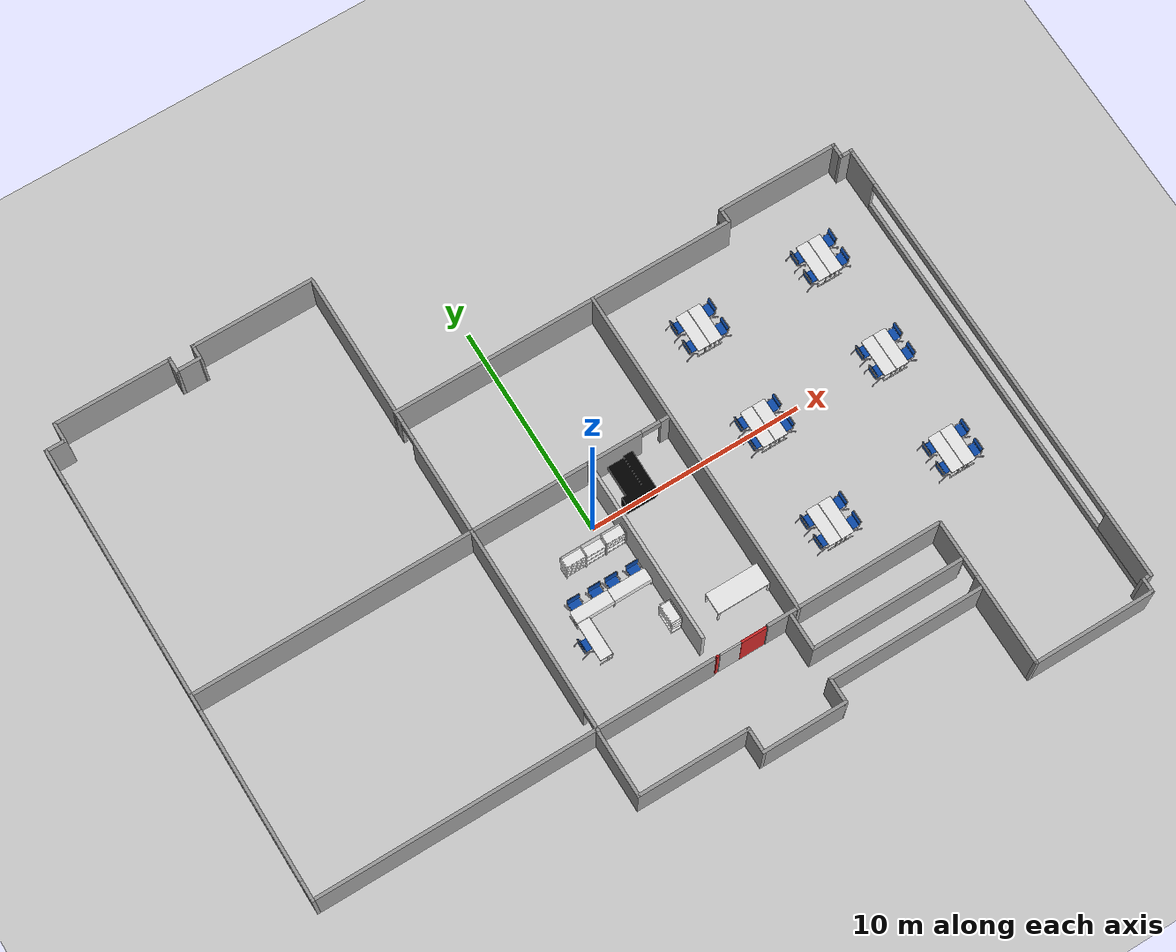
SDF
<?xml version="1.0" ?>
<sdf version="1.5">
  <world name="default">
    <gui>
      <camera name="user_camera">
        <pose>-5 -7 4 0 0.54 0.76</pose>
      </camera>
    </gui>
    <physics type='ode'>
      <real_time_factor>1</real_time_factor>
      <real_time_update_rate>0.0</real_time_update_rate>
      <max_step_size>0.002</max_step_size>
    </physics>
    <scene>
      <ambient>0.7 0.7 0.7 1</ambient>
      <background>0.1 0.1 0.1 1</background>
    </scene>
    <include>
      <uri>model://sun</uri>
    </include>
    <include>
      <uri>model://ground_plane</uri>
    </include>
    <include>
      <uri>model://2nd_floor</uri>
      <pose>0 0 0 0 0 0</pose>
      <static>true</static>
    </include>

<!--  ******* showroom *************  -->
    <include>
      <name>front</name>
      <uri>model://front</uri>
      <static>true</static>
      <pose>2.2 0.7 0 0 0 -1.57</pose>
    </include>
    <include>
      <name>meeting_table</name>
      <uri>model://meeting_table</uri>
      <pose>3.5 -5.5 0 0 0 -1.57</pose>
    </include>

<!--  ******* cafeteria *************  -->
    <include>
      <name>table_set1</name>
      <uri>model://table_set</uri>
      <pose>8 5 0 0 0 0</pose>
    </include>
    <include>
      <name>table_set2</name>
      <uri>model://table_set</uri>
      <pose>8 0 0 0 0 0</pose>
    </include>
    <include>
      <name>table_set3</name>
      <uri>model://table_set</uri>
      <pose>8 -5 0 0 0 0</pose>
    </include>
    <include>
      <name>table_set4</name>
      <uri>model://table_set</uri>
      <pose>14 5 0 0 0 0</pose>
    </include>
    <include>
      <name>table_set5</name>
      <uri>model://table_set</uri>
      <pose>14 0 0 0 0 0</pose>
    </include>
    <include>
      <name>table_set6</name>
      <uri>model://table_set</uri>
      <pose>14 -5 0 0 0 0</pose>
    </include>

<!--  ******* experimental room *************  -->

    <include>
      <name>shelf-1</name>
      <uri>model://shelf</uri>
      <pose>0.34 -1 0 0 0 -1.57</pose>
    </include>
    <include>
      <name>slef2</name>
      <uri>model://shelf2</uri>
      <pose>-0.61 -1 0 0 0 -1.57</pose>
    </include>
    <include>
      <name>slef3</name>
      <uri>model://shelf3</uri>
      <pose>-1.56 -1 0 0 0 -1.57</pose>
    </include>

    <include>
      <name>half_table_set1</name>
      <uri>model://half_table_set</uri>
      <pose>-0.1 -3.0 0 0 0 -1.57</pose>
    </include>
    <include>
      <name>half_table_set2</name>
      <uri>model://half_table_set</uri>
      <pose>-1.9 -3.0 0 0 0 -1.57</pose>
    </include>
    <include>
      <name>long_table</name>
      <uri>model://long_table</uri>
      <pose>-2.5 -4.2 0 0 0 0</pose>
    </include>

    <include>
      <name>shelf-2</name>
      <uri>model://shelf</uri>
      <pose>0.58 -5 0 0 0 3.14</pose>
    </include>

    <include>
      <name>chair</name>
      <uri>model://chair</uri>
      <pose>-2.9 -4.2 0 0 0 0</pose>
    </include>

<!-- *************  auto door   **************** -->

    <!-- World plugin that publishes event messages.
         The topics used in these messages match up with topics used by the
         plugin in the elevator model below.
    -->
    <plugin filename="libSimEventsPlugin.so" name="elevator_event_plugin">
      <!-- Region on the ground floor, in front of the elevator -->
      <region>
        <name>region1</name>
        <volume>
          <min>0.5 -6 0</min>
          <max>2.5 -9 1</max>
        </volume>
      </region>

      <!-- Region on the first floor, in front of the elevator -->
      <region>
        <name>region2</name>
        <volume>
          <min>0.5 -7 3</min>
          <max>2.5 -9 4</max>
        </volume>
      </region>

      <!-- Event publisher for ground floor-->
      <event>
        <name>region1_event</name>
        <type>occupied</type>
        <region>region1</region>
        <topic>~/elevator</topic>
        <msg_data>0</msg_data>
      </event>

      <!-- Event publisher for first floor-->
      <event>
        <name>region2_event</name>
        <type>occupied</type>
        <region>region2</region>
        <topic>~/elevator</topic>
        <msg_data>1</msg_data>
      </event>
    </plugin>

    <!-- The elevator car -->
    <model name="elevator">
      <pose>0 0 0.075 0 0 0</pose>
      <link name="link">
        <inertial>
          <mass>800</mass>
        </inertial>
        <!-- wall1_collision is the wall to the right of the door, when
             facing the door -->
        <collision name="wall1_collision">
          <pose>2.7 -7.8 1.2 0 0 0</pose>
          <geometry>
            <box>
              <size>1.2 0.1 2.5</size>
            </box>
          </geometry>
        </collision>
        <visual name="wall1_visual">
          <pose>2.7 -7.8 1.2 0 0 0</pose>
          <geometry>
            <box>
              <size>1.2 0.1 2.5</size>
            </box>
          </geometry>
          <material>
            <script>
              <name>Gazebo/Red</name>
            </script>
          </material>
        </visual>

        <!-- wall2_collision is the wall to the left of the door, when
             facing the door -->
        <collision name="wall2_collision">
          <pose>1.0 -7.8 1.2 0 0 0</pose>
          <geometry>
            <box>
              <size>0.125 0.1 2.5</size>
            </box>
          </geometry>
        </collision>
        <visual name="wall2_visual">
          <pose>1.0 -7.8 1.2 0 0 0</pose>
          <geometry>
            <box>
              <size>0.125 0.1 2.5</size>
            </box>
          </geometry>
          <material>
            <script>
              <name>Gazebo/Red</name>
            </script>
          </material>
        </visual>
      </link>

      <link name="door">
        <pose>1.6 -7.8 1.2 0 0 0</pose>
        <collision name="collision">
          <geometry>
            <box>
              <size>1.0 0.08 2.5</size>
            </box>
          </geometry>
        </collision>
        <visual name="visual">
          <geometry>
            <box>
              <size>1.0 0.08 2.5</size>
            </box>
          </geometry>
        </visual>
      </link>

      <joint name="door" type="prismatic">
        <parent>link</parent>
        <child>door</child>
        <axis>
          <xyz>1 0 0</xyz>
          <limit>
            <lower>0</lower>
            <upper>1</upper>
            <effort>10</effort>
          </limit>

          <dynamics>
            <damping>2</damping>
          </dynamics>
        </axis>
      </joint>

      <joint name="lift" type="prismatic">
        <parent>world</parent>
        <child>link</child>
        <axis>
          <xyz>0 0 1</xyz>
          <limit>
            <lower>0</lower>
            <upper>10</upper>
            <effort>100000</effort>
          </limit>

          <dynamics>
            <damping>50</damping>
          </dynamics>
        </axis>
        <physics>
          <ode>
            <implicit_spring_damper>1</implicit_spring_damper>
          </ode>
        </physics>
      </joint>

      <!-- Plugin to control the elevator -->
      <plugin filename="libElevatorPlugin.so" name="elevator_plugin">
        <lift_joint>elevator::lift</lift_joint>
        <door_joint>elevator::door</door_joint>
        <floor_height>3.075</floor_height>

        <!-- Time the elevator door will stay open in seconds -->
        <door_wait_time>5</door_wait_time>

        <!-- This topic is used to control the elevator -->
        <topic>~/elevator</topic>
      </plugin>
    </model>

  </world>
</sdf>

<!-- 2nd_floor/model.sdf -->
<sdf version='1.6'>
  <model name='2nd_floor'>
    <pose frame=''>-1.7675 -0.234448 0 0 -0 0</pose>
    <link name='Wall_14'>
      <collision name='Wall_14_Collision'>
        <geometry>
          <box>
            <size>3.25 0.15 2.5</size>
          </box>
        </geometry>
        <pose frame=''>0 0 1.25 0 -0 0</pose>
      </collision>
      <visual name='Wall_14_Visual'>
        <pose frame=''>0 0 1.25 0 -0 0</pose>
        <geometry>
          <box>
            <size>3.25 0.15 2.5</size>
          </box>
        </geometry>
        <material>
          <script>
            <uri>file://media/materials/scripts/gazebo.material</uri>
            <name>Gazebo/Grey</name>
          </script>
          <ambient>1 1 1 1</ambient>
        </material>
      </visual>
      <pose frame=''>-4.6545 -9.37455 0 0 0 -1.5708</pose>
    </link>
    <link name='Wall_15'>
      <collision name='Wall_15_Collision'>
        <geometry>
          <box>
            <size>5.25 0.15 2.5</size>
          </box>
        </geometry>
        <pose frame=''>0 0 1.25 0 -0 0</pose>
      </collision>
      <visual name='Wall_15_Visual'>
        <pose frame=''>0 0 1.25 0 -0 0</pose>
        <geometry>
          <box>
            <size>5.25 0.15 2.5</size>
          </box>
        </geometry>
        <material>
          <script>
            <uri>file://media/materials/scripts/gazebo.material</uri>
            <name>Gazebo/Grey</name>
          </script>
          <ambient>1 1 1 1</ambient>
        </material>
      </visual>
      <pose frame=''>-2.1045 -10.9246 0 0 -0 0</pose>
    </link>
    <link name='Wall_16'>
      <collision name='Wall_16_Collision'>
        <geometry>
          <box>
            <size>1.25 0.15 2.5</size>
          </box>
        </geometry>
        <pose frame=''>0 0 1.25 0 -0 0</pose>
      </collision>
      <visual name='Wall_16_Visual'>
        <pose frame=''>0 0 1.25 0 -0 0</pose>
        <geometry>
          <box>
            <size>1.25 0.15 2.5</size>
          </box>
        </geometry>
        <material>
          <script>
            <uri>file://media/materials/scripts/gazebo.material</uri>
            <name>Gazebo/Grey</name>
          </script>
          <ambient>1 1 1 1</ambient>
        </material>
      </visual>
      <pose frame=''>0.4455 -11.4746 0 0 0 -1.5708</pose>
    </link>
    <link name='Wall_17'>
      <collision name='Wall_17_Collision'>
        <geometry>
          <box>
            <size>4 0.15 2.5</size>
          </box>
        </geometry>
        <pose frame=''>0 0 1.25 0 -0 0</pose>
      </collision>
      <visual name='Wall_17_Visual'>
        <pose frame=''>0 0 1.25 0 -0 0</pose>
        <geometry>
          <box>
            <size>4 0.15 2.5</size>
          </box>
        </geometry>
        <material>
          <script>
            <uri>file://media/materials/scripts/gazebo.material</uri>
            <name>Gazebo/Grey</name>
          </script>
          <ambient>1 1 1 1</ambient>
        </material>
      </visual>
      <pose frame=''>2.3705 -12.0246 0 0 -0 0</pose>
    </link>
    <link name='Wall_18'>
      <collision name='Wall_18_Collision'>
        <geometry>
          <box>
            <size>1.25 0.15 2.5</size>
          </box>
        </geometry>
        <pose frame=''>0 0 1.25 0 -0 0</pose>
      </collision>
      <visual name='Wall_18_Visual'>
        <pose frame=''>0 0 1.25 0 -0 0</pose>
        <geometry>
          <box>
            <size>1.25 0.15 2.5</size>
          </box>
        </geometry>
        <material>
          <script>
            <uri>file://media/materials/scripts/gazebo.material</uri>
            <name>Gazebo/Grey</name>
          </script>
          <ambient>1 1 1 1</ambient>
        </material>
      </visual>
      <pose frame=''>4.2955 -11.4746 0 0 -0 1.5708</pose>
    </link>
    <link name='Wall_19'>
      <collision name='Wall_19_Collision'>
        <geometry>
          <box>
            <size>7.3 0.15 2.5</size>
          </box>
        </geometry>
        <pose frame=''>0 0 1.25 0 -0 0</pose>
      </collision>
      <visual name='Wall_19_Visual'>
        <pose frame=''>0 0 1.25 0 -0 0</pose>
        <geometry>
          <box>
            <size>7.3 0.15 2.5</size>
          </box>
        </geometry>
        <material>
          <script>
            <uri>file://media/materials/scripts/gazebo.material</uri>
            <name>Gazebo/Grey</name>
          </script>
          <ambient>1 1 1 1</ambient>
        </material>
      </visual>
      <pose frame=''>7.8705 -10.9246 0 0 -0 0</pose>
    </link>
    <link name='Wall_2'>
      <collision name='Wall_2_Collision'>
        <geometry>
          <box>
            <size>18.5 0.15 2.5</size>
          </box>
        </geometry>
        <pose frame=''>0 0 1.25 0 -0 0</pose>
      </collision>
      <visual name='Wall_2_Visual'>
        <pose frame=''>0 0 1.25 0 -0 0</pose>
        <geometry>
          <box>
            <size>18.5 0.15 2.5</size>
          </box>
        </geometry>
        <material>
          <script>
            <uri>file://media/materials/scripts/gazebo.material</uri>
            <name>Gazebo/Grey</name>
          </script>
          <ambient>1 1 1 1</ambient>
        </material>
      </visual>
      <pose frame=''>-8.3795 -7.79855 0 0 -0 0</pose>
    </link>
    <link name='Wall_21'>
      <collision name='Wall_21_Collision'>
        <geometry>
          <box>
            <size>7.19567 0.15 2.5</size>
          </box>
        </geometry>
        <pose frame=''>0 0 1.25 0 -0 0</pose>
      </collision>
      <visual name='Wall_21_Visual'>
        <pose frame=''>0 0 1.25 0 -0 0</pose>
        <geometry>
          <box>
            <size>7.19567 0.15 2.5</size>
          </box>
        </geometry>
        <material>
          <script>
            <uri>file://media/materials/scripts/gazebo.material</uri>
            <name>Gazebo/Grey</name>
          </script>
          <ambient>1 1 1 1</ambient>
        </material>
      </visual>
      <pose frame=''>7.9225 -9.52355 0 0 -0 3.14159</pose>
    </link>
    <link name='Wall_22'>
      <collision name='Wall_22_Collision'>
        <geometry>
          <box>
            <size>1.75 0.15 2.5</size>
          </box>
        </geometry>
        <pose frame=''>0 0 1.25 0 -0 0</pose>
      </collision>
      <visual name='Wall_22_Visual'>
        <pose frame=''>0 0 1.25 0 -0 0</pose>
        <geometry>
          <box>
            <size>1.75 0.15 2.5</size>
          </box>
        </geometry>
        <material>
          <script>
            <uri>file://media/materials/scripts/gazebo.material</uri>
            <name>Gazebo/Grey</name>
          </script>
          <ambient>1 1 1 1</ambient>
        </material>
      </visual>
      <pose frame=''>4.39959 -8.72345 0 0 -0 1.57068</pose>
    </link>
    <link name='Wall_28'>
      <pose frame=''>-4.6245 3.35145 0 0 0 -1.5708</pose>
      <visual name='Wall_28_Visual_0'>
        <pose frame=''>-7.60176 0 1.25 0 -0 0</pose>
        <geometry>
          <box>
            <size>7.33247 0.15 2.5</size>
          </box>
        </geometry>
        <material>
          <script>
            <uri>file://media/materials/scripts/gazebo.material</uri>
            <name>Gazebo/Grey</name>
          </script>
          <ambient>1 1 1 1</ambient>
        </material>
      </visual>
      <collision name='Wall_28_Collision_0'>
        <geometry>
          <box>
            <size>7.33247 0.15 2.5</size>
          </box>
        </geometry>
        <pose frame=''>-7.60176 0 1.25 0 -0 0</pose>
      </collision>
      <visual name='Wall_28_Visual_1'>
        <pose frame=''>3.59301 0 1.25 0 -0 0</pose>
        <geometry>
          <box>
            <size>13.2571 0.15 2.5</size>
          </box>
        </geometry>
        <material>
          <script>
            <uri>file://media/materials/scripts/gazebo.material</uri>
            <name>Gazebo/Grey</name>
          </script>
          <ambient>1 1 1 1</ambient>
        </material>
      </visual>
      <collision name='Wall_28_Collision_1'>
        <geometry>
          <box>
            <size>13.2571 0.15 2.5</size>
          </box>
        </geometry>
        <pose frame=''>3.59301 0 1.25 0 -0 0</pose>
      </collision>
      <visual name='Wall_28_Visual_2'>
        <pose frame=''>11.1948 0 1.25 0 -0 0</pose>
        <geometry>
          <box>
            <size>0.146446 0.15 2.5</size>
          </box>
        </geometry>
        <material>
          <script>
            <uri>file://media/materials/scripts/gazebo.material</uri>
            <name>Gazebo/Grey</name>
          </script>
          <ambient>1 1 1 1</ambient>
        </material>
      </visual>
      <collision name='Wall_28_Collision_2'>
        <geometry>
          <box>
            <size>0.146446 0.15 2.5</size>
          </box>
        </geometry>
        <pose frame=''>11.1948 0 1.25 0 -0 0</pose>
      </collision>
      <visual name='Wall_28_Visual_3'>
        <pose frame=''>-3.48553 0 2.25 0 -0 0</pose>
        <geometry>
          <box>
            <size>0.9 0.15 0.5</size>
          </box>
        </geometry>
        <material>
          <script>
            <uri>file://media/materials/scripts/gazebo.material</uri>
            <name>Gazebo/Grey</name>
          </script>
          <ambient>1 1 1 1</ambient>
        </material>
      </visual>
      <collision name='Wall_28_Collision_3'>
        <geometry>
          <box>
            <size>0.9 0.15 0.5</size>
          </box>
        </geometry>
        <pose frame=''>-3.48553 0 2.25 0 -0 0</pose>
      </collision>
      <visual name='Wall_28_Visual_4'>
        <pose frame=''>10.6716 0 2.25 0 -0 0</pose>
        <geometry>
          <box>
            <size>0.9 0.15 0.5</size>
          </box>
        </geometry>
        <material>
          <script>
            <uri>file://media/materials/scripts/gazebo.material</uri>
            <name>Gazebo/Grey</name>
          </script>
          <ambient>1 1 1 1</ambient>
        </material>
      </visual>
      <collision name='Wall_28_Collision_4'>
        <geometry>
          <box>
            <size>0.9 0.15 0.5</size>
          </box>
        </geometry>
        <pose frame=''>10.6716 0 2.25 0 -0 0</pose>
      </collision>
    </link>
    <link name='Wall_31'>
      <pose frame=''>-6.3795 1.80145 0 0 -0 0</pose>
      <visual name='Wall_31_Visual_0'>
        <pose frame=''>-0.72653 0 1.25 0 -0 0</pose>
        <geometry>
          <box>
            <size>21.0469 0.15 2.5</size>
          </box>
        </geometry>
        <material>
          <script>
            <uri>file://media/materials/scripts/gazebo.material</uri>
            <name>Gazebo/Grey</name>
          </script>
          <ambient>1 1 1 1</ambient>
        </material>
      </visual>
      <collision name='Wall_31_Collision_0'>
        <geometry>
          <box>
            <size>21.0469 0.15 2.5</size>
          </box>
        </geometry>
        <pose frame=''>-0.72653 0 1.25 0 -0 0</pose>
      </collision>
      <visual name='Wall_31_Visual_1'>
        <pose frame=''>10.9735 0 1.25 0 -0 0</pose>
        <geometry>
          <box>
            <size>0.553059 0.15 2.5</size>
          </box>
        </geometry>
        <material>
          <script>
            <uri>file://media/materials/scripts/gazebo.material</uri>
            <name>Gazebo/Grey</name>
          </script>
          <ambient>1 1 1 1</ambient>
        </material>
      </visual>
      <collision name='Wall_31_Collision_1'>
        <geometry>
          <box>
            <size>0.553059 0.15 2.5</size>
          </box>
        </geometry>
        <pose frame=''>10.9735 0 1.25 0 -0 0</pose>
      </collision>
      <visual name='Wall_31_Visual_2'>
        <pose frame=''>10.2469 0 2.25 0 -0 0</pose>
        <geometry>
          <box>
            <size>0.9 0.15 0.5</size>
          </box>
        </geometry>
        <material>
          <script>
            <uri>file://media/materials/scripts/gazebo.material</uri>
            <name>Gazebo/Grey</name>
          </script>
          <ambient>1 1 1 1</ambient>
        </material>
      </visual>
      <collision name='Wall_31_Collision_2'>
        <geometry>
          <box>
            <size>0.9 0.15 0.5</size>
          </box>
        </geometry>
        <pose frame=''>10.2469 0 2.25 0 -0 0</pose>
      </collision>
    </link>
    <link name='Wall_33'>
      <collision name='Wall_33_Collision'>
        <geometry>
          <box>
            <size>8.75 0.15 2.5</size>
          </box>
        </geometry>
        <pose frame=''>0 0 1.25 0 -0 0</pose>
      </collision>
      <visual name='Wall_33_Visual'>
        <pose frame=''>0 0 1.25 0 -0 0</pose>
        <geometry>
          <mesh>
            <uri>model://2nd_floor/meshes/wall_33.dae</uri>
          </mesh>
        </geometry>
      </visual>
      <pose frame=''>0.909288 -2.49727 0 0 0 -1.5708</pose>
    </link>
    <link name='Wall_35'>
      <collision name='Wall_35_Collision'>
        <geometry>
          <box>
            <size>8.25 0.15 2.5</size>
          </box>
        </geometry>
        <pose frame=''>0 0 1.25 0 -0 0</pose>
      </collision>
      <visual name='Wall_35_Visual'>
        <pose frame=''>0 0 1.25 0 -0 0</pose>
        <geometry>
          <box>
            <size>8.25 0.15 2.5</size>
          </box>
        </geometry>
        <material>
          <script>
            <uri>file://media/materials/scripts/gazebo.material</uri>
            <name>Gazebo/Grey</name>
          </script>
          <ambient>1 1 1 1</ambient>
        </material>
      </visual>
      <pose frame=''>7.46969 -7.77811 0 0 -0 0</pose>
    </link>
    <link name='Wall_39'>
      <collision name='Wall_39_Collision'>
        <geometry>
          <box>
            <size>0.75 0.15 2.5</size>
          </box>
        </geometry>
        <pose frame=''>0 0 1.25 0 -0 0</pose>
      </collision>
      <visual name='Wall_39_Visual'>
        <pose frame=''>0 0 1.25 0 -0 0</pose>
        <geometry>
          <box>
            <size>0.75 0.15 2.5</size>
          </box>
        </geometry>
        <material>
          <script>
            <uri>file://media/materials/scripts/gazebo.material</uri>
            <name>Gazebo/Grey</name>
          </script>
          <ambient>1 1 1 1</ambient>
        </material>
      </visual>
      <pose frame=''>11.4584 8.09888 0 0 -0 1.5708</pose>
    </link>
    <link name='Wall_40'>
      <collision name='Wall_40_Collision'>
        <geometry>
          <box>
            <size>5.75 0.15 2.5</size>
          </box>
        </geometry>
        <pose frame=''>0 0 1.25 0 -0 0</pose>
      </collision>
      <visual name='Wall_40_Visual'>
        <pose frame=''>0 0 1.25 0 -0 0</pose>
        <geometry>
          <box>
            <size>5.75 0.15 2.5</size>
          </box>
        </geometry>
        <material>
          <script>
            <uri>file://media/materials/scripts/gazebo.material</uri>
            <name>Gazebo/Grey</name>
          </script>
          <ambient>1 1 1 1</ambient>
        </material>
      </visual>
      <pose frame=''>14.2584 8.39888 0 0 -0 0</pose>
    </link>
    <link name='Wall_41'>
      <collision name='Wall_41_Collision'>
        <geometry>
          <box>
            <size>0.75 0.15 2.5</size>
          </box>
        </geometry>
        <pose frame=''>0 0 1.25 0 -0 0</pose>
      </collision>
      <visual name='Wall_41_Visual'>
        <pose frame=''>0 0 1.25 0 -0 0</pose>
        <geometry>
          <box>
            <size>0.75 0.15 2.5</size>
          </box>
        </geometry>
        <material>
          <script>
            <uri>file://media/materials/scripts/gazebo.material</uri>
            <name>Gazebo/Grey</name>
          </script>
          <ambient>1 1 1 1</ambient>
        </material>
      </visual>
      <pose frame=''>17.0585 8.09867 0 0 0 -1.57066</pose>
    </link>
    <link name='Wall_46'>
      <collision name='Wall_46_Collision'>
        <geometry>
          <box>
            <size>0.645992 0.15 2.5</size>
          </box>
        </geometry>
        <pose frame=''>0 0 1.25 0 -0 0</pose>
      </collision>
      <visual name='Wall_46_Visual'>
        <pose frame=''>0 0 1.25 0 -0 0</pose>
        <geometry>
          <box>
            <size>0.645992 0.15 2.5</size>
          </box>
        </geometry>
        <material>
          <script>
            <uri>file://media/materials/scripts/gazebo.material</uri>
            <name>Gazebo/Grey</name>
          </script>
          <ambient>1 1 1 1</ambient>
        </material>
      </visual>
      <pose frame=''>17.3065 7.79845 0 0 -0 0</pose>
    </link>
    <link name='Wall_48'>
      <pose frame=''>17.5545 -3.12655 0 0 0 -1.5708</pose>
      <visual name='Wall_48_Visual_0'>
        <pose frame=''>-10.0725 0 1.25 0 -0 0</pose>
        <geometry>
          <box>
            <size>1.85498 0.15 2.5</size>
          </box>
        </geometry>
        <material>
          <script>
            <uri>file://media/materials/scripts/gazebo.material</uri>
            <name>Gazebo/Grey</name>
          </script>
          <ambient>1 1 1 1</ambient>
        </material>
      </visual>
      <collision name='Wall_48_Collision_0'>
        <geometry>
          <box>
            <size>1.85498 0.15 2.5</size>
          </box>
        </geometry>
        <pose frame=''>-10.0725 0 1.25 0 -0 0</pose>
      </collision>
      <visual name='Wall_48_Visual_1'>
        <pose frame=''>0.92749 0 0.25 0 -0 0</pose>
        <geometry>
          <box>
            <size>20.145 0.15 0.5</size>
          </box>
        </geometry>
        <material>
          <script>
            <uri>file://media/materials/scripts/gazebo.material</uri>
            <name>Gazebo/Grey</name>
          </script>
          <ambient>1 1 1 1</ambient>
        </material>
      </visual>
      <collision name='Wall_48_Collision_1'>
        <geometry>
          <box>
            <size>20.145 0.15 0.5</size>
          </box>
        </geometry>
        <pose frame=''>0.92749 0 0.25 0 -0 0</pose>
      </collision>
      <visual name='Wall_48_Visual_2'>
        <pose frame=''>9.42749 0 1.5 0 -0 0</pose>
        <geometry>
          <box>
            <size>3.14502 0.15 2</size>
          </box>
        </geometry>
        <material>
          <script>
            <uri>file://media/materials/scripts/gazebo.material</uri>
            <name>Gazebo/Grey</name>
          </script>
          <ambient>1 1 1 1</ambient>
        </material>
      </visual>
      <collision name='Wall_48_Collision_2'>
        <geometry>
          <box>
            <size>3.14502 0.15 2</size>
          </box>
        </geometry>
        <pose frame=''>9.42749 0 1.5 0 -0 0</pose>
      </collision>
      <visual name='Wall_48_Visual_3'>
        <pose frame=''>-0.64502 0 2.25 0 -0 0</pose>
        <geometry>
          <box>
            <size>17 0.15 0.5</size>
          </box>
        </geometry>
        <material>
          <script>
            <uri>file://media/materials/scripts/gazebo.material</uri>
            <name>Gazebo/Grey</name>
          </script>
          <ambient>1 1 1 1</ambient>
        </material>
      </visual>
      <collision name='Wall_48_Collision_3'>
        <geometry>
          <box>
            <size>17 0.15 0.5</size>
          </box>
        </geometry>
        <pose frame=''>-0.64502 0 2.25 0 -0 0</pose>
      </collision>
    </link>
    <link name='Wall_49'>
      <collision name='Wall_49_Collision'>
        <geometry>
          <box>
            <size>0.5 0.15 2.5</size>
          </box>
        </geometry>
        <pose frame=''>0 0 1.25 0 -0 0</pose>
      </collision>
      <visual name='Wall_49_Visual'>
        <pose frame=''>0 0 1.25 0 -0 0</pose>
        <geometry>
          <box>
            <size>0.5 0.15 2.5</size>
          </box>
        </geometry>
        <material>
          <script>
            <uri>file://media/materials/scripts/gazebo.material</uri>
            <name>Gazebo/Grey</name>
          </script>
          <ambient>1 1 1 1</ambient>
        </material>
      </visual>
      <pose frame=''>17.3795 -14.0516 0 0 -0 3.14159</pose>
    </link>
    <link name='Wall_50'>
      <collision name='Wall_50_Collision'>
        <geometry>
          <box>
            <size>0.75 0.15 2.5</size>
          </box>
        </geometry>
        <pose frame=''>0 0 1.25 0 -0 0</pose>
      </collision>
      <visual name='Wall_50_Visual'>
        <pose frame=''>0 0 1.25 0 -0 0</pose>
        <geometry>
          <box>
            <size>0.75 0.15 2.5</size>
          </box>
        </geometry>
        <material>
          <script>
            <uri>file://media/materials/scripts/gazebo.material</uri>
            <name>Gazebo/Grey</name>
          </script>
          <ambient>1 1 1 1</ambient>
        </material>
      </visual>
      <pose frame=''>17.2045 -14.3516 0 0 0 -1.5708</pose>
    </link>
    <link name='Wall_51'>
      <collision name='Wall_51_Collision'>
        <geometry>
          <box>
            <size>5.75 0.15 2.5</size>
          </box>
        </geometry>
        <pose frame=''>0 0 1.25 0 -0 0</pose>
      </collision>
      <visual name='Wall_51_Visual'>
        <pose frame=''>0 0 1.25 0 -0 0</pose>
        <geometry>
          <box>
            <size>5.75 0.15 2.5</size>
          </box>
        </geometry>
        <material>
          <script>
            <uri>file://media/materials/scripts/gazebo.material</uri>
            <name>Gazebo/Grey</name>
          </script>
          <ambient>1 1 1 1</ambient>
        </material>
      </visual>
      <pose frame=''>14.4045 -14.6516 0 0 -0 3.14159</pose>
    </link>
    <link name='Wall_52'>
      <pose frame=''>11.6045 -11.2266 0 0 -0 1.5708</pose>
      <visual name='Wall_52_Visual_0'>
        <pose frame=''>-1.34756 0 1.25 0 -0 0</pose>
        <geometry>
          <box>
            <size>4.30488 0.15 2.5</size>
          </box>
        </geometry>
        <material>
          <script>
            <uri>file://media/materials/scripts/gazebo.material</uri>
            <name>Gazebo/Grey</name>
          </script>
          <ambient>1 1 1 1</ambient>
        </material>
      </visual>
      <collision name='Wall_52_Collision_0'>
        <geometry>
          <box>
            <size>4.30488 0.15 2.5</size>
          </box>
        </geometry>
        <pose frame=''>-1.34756 0 1.25 0 -0 0</pose>
      </collision>
      <visual name='Wall_52_Visual_1'>
        <pose frame=''>2.60244 0 1.25 0 -0 0</pose>
        <geometry>
          <box>
            <size>1.79512 0.15 2.5</size>
          </box>
        </geometry>
        <material>
          <script>
            <uri>file://media/materials/scripts/gazebo.material</uri>
            <name>Gazebo/Grey</name>
          </script>
          <ambient>1 1 1 1</ambient>
        </material>
      </visual>
      <collision name='Wall_52_Collision_1'>
        <geometry>
          <box>
            <size>1.79512 0.15 2.5</size>
          </box>
        </geometry>
        <pose frame=''>2.60244 0 1.25 0 -0 0</pose>
      </collision>
      <visual name='Wall_52_Visual_2'>
        <pose frame=''>1.25488 0 2.25 0 -0 0</pose>
        <geometry>
          <box>
            <size>0.9 0.15 0.5</size>
          </box>
        </geometry>
        <material>
          <script>
            <uri>file://media/materials/scripts/gazebo.material</uri>
            <name>Gazebo/Grey</name>
          </script>
          <ambient>1 1 1 1</ambient>
        </material>
      </visual>
      <collision name='Wall_52_Collision_2'>
        <geometry>
          <box>
            <size>0.9 0.15 0.5</size>
          </box>
        </geometry>
        <pose frame=''>1.25488 0 2.25 0 -0 0</pose>
      </collision>
    </link>
    <link name='Wall_54'>
      <collision name='Wall_54_Collision'>
        <geometry>
          <box>
            <size>15.75 0.15 2.5</size>
          </box>
        </geometry>
        <pose frame=''>0 0 1.25 0 -0 0</pose>
      </collision>
      <visual name='Wall_54_Visual'>
        <pose frame=''>0 0 1.25 0 -0 0</pose>
        <geometry>
          <box>
            <size>15.75 0.15 2.5</size>
          </box>
        </geometry>
        <material>
          <script>
            <uri>file://media/materials/scripts/gazebo.material</uri>
            <name>Gazebo/Grey</name>
          </script>
          <ambient>1 1 1 1</ambient>
        </material>
      </visual>
      <pose frame=''>4.80602 0.004502 0 0 0 -1.5708</pose>
    </link>
    <link name='Wall_57'>
      <collision name='Wall_57_Collision'>
        <geometry>
          <box>
            <size>16.25 0.15 2.5</size>
          </box>
        </geometry>
        <pose frame=''>0 0 1.25 0 -0 0</pose>
      </collision>
      <visual name='Wall_57_Visual'>
        <pose frame=''>0 0 1.25 0 -0 0</pose>
        <geometry>
          <box>
            <size>16.25 0.15 2.5</size>
          </box>
        </geometry>
        <material>
          <script>
            <uri>file://media/materials/scripts/gazebo.material</uri>
            <name>Gazebo/Grey</name>
          </script>
          <ambient>1 1 1 1</ambient>
        </material>
      </visual>
      <pose frame=''>3.40842 7.79888 0 0 -0 3.14159</pose>
    </link>
    <link name='Wall_59'>
      <pose frame=''>-17.5545 3.00145 0 0 -0 1.5708</pose>
      <visual name='Wall_59_Visual_0'>
        <pose frame=''>-10.4003 0 1.25 0 -0 0</pose>
        <geometry>
          <box>
            <size>0.949417 0.15 2.5</size>
          </box>
        </geometry>
        <material>
          <script>
            <uri>file://media/materials/scripts/gazebo.material</uri>
            <name>Gazebo/Grey</name>
          </script>
          <ambient>1 1 1 1</ambient>
        </material>
      </visual>
      <collision name='Wall_59_Collision_0'>
        <geometry>
          <box>
            <size>0.949417 0.15 2.5</size>
          </box>
        </geometry>
        <pose frame=''>-10.4003 0 1.25 0 -0 0</pose>
      </collision>
      <visual name='Wall_59_Visual_1'>
        <pose frame=''>0.474709 0 0.25 0 -0 0</pose>
        <geometry>
          <box>
            <size>20.8006 0.15 0.5</size>
          </box>
        </geometry>
        <material>
          <script>
            <uri>file://media/materials/scripts/gazebo.material</uri>
            <name>Gazebo/Grey</name>
          </script>
          <ambient>1 1 1 1</ambient>
        </material>
      </visual>
      <collision name='Wall_59_Collision_1'>
        <geometry>
          <box>
            <size>20.8006 0.15 0.5</size>
          </box>
        </geometry>
        <pose frame=''>0.474709 0 0.25 0 -0 0</pose>
      </collision>
      <visual name='Wall_59_Visual_2'>
        <pose frame=''>-0.400126 0 1.5 0 -0 0</pose>
        <geometry>
          <box>
            <size>3.05091 0.15 2</size>
          </box>
        </geometry>
        <material>
          <script>
            <uri>file://media/materials/scripts/gazebo.material</uri>
            <name>Gazebo/Grey</name>
          </script>
          <ambient>1 1 1 1</ambient>
        </material>
      </visual>
      <collision name='Wall_59_Collision_2'>
        <geometry>
          <box>
            <size>3.05091 0.15 2</size>
          </box>
        </geometry>
        <pose frame=''>-0.400126 0 1.5 0 -0 0</pose>
      </collision>
      <visual name='Wall_59_Visual_3'>
        <pose frame=''>10.0002 0 1.5 0 -0 0</pose>
        <geometry>
          <box>
            <size>1.74967 0.15 2</size>
          </box>
        </geometry>
        <material>
          <script>
            <uri>file://media/materials/scripts/gazebo.material</uri>
            <name>Gazebo/Grey</name>
          </script>
          <ambient>1 1 1 1</ambient>
        </material>
      </visual>
      <collision name='Wall_59_Collision_3'>
        <geometry>
          <box>
            <size>1.74967 0.15 2</size>
          </box>
        </geometry>
        <pose frame=''>10.0002 0 1.5 0 -0 0</pose>
      </collision>
      <visual name='Wall_59_Visual_4'>
        <pose frame=''>-5.92558 0 2.25 0 -0 0</pose>
        <geometry>
          <box>
            <size>8 0.15 0.5</size>
          </box>
        </geometry>
        <material>
          <script>
            <uri>file://media/materials/scripts/gazebo.material</uri>
            <name>Gazebo/Grey</name>
          </script>
          <ambient>1 1 1 1</ambient>
        </material>
      </visual>
      <collision name='Wall_59_Collision_4'>
        <geometry>
          <box>
            <size>8 0.15 0.5</size>
          </box>
        </geometry>
        <pose frame=''>-5.92558 0 2.25 0 -0 0</pose>
      </collision>
      <visual name='Wall_59_Visual_5'>
        <pose frame=''>5.12533 0 2.25 0 -0 0</pose>
        <geometry>
          <box>
            <size>8 0.15 0.5</size>
          </box>
        </geometry>
        <material>
          <script>
            <uri>file://media/materials/scripts/gazebo.material</uri>
            <name>Gazebo/Grey</name>
          </script>
          <ambient>1 1 1 1</ambient>
        </material>
      </visual>
      <collision name='Wall_59_Collision_5'>
        <geometry>
          <box>
            <size>8 0.15 0.5</size>
          </box>
        </geometry>
        <pose frame=''>5.12533 0 2.25 0 -0 0</pose>
      </collision>
    </link>
    <link name='Wall_60'>
      <collision name='Wall_60_Collision'>
        <geometry>
          <box>
            <size>1 0.15 2.5</size>
          </box>
        </geometry>
        <pose frame=''>0 0 1.25 0 -0 0</pose>
      </collision>
      <visual name='Wall_60_Visual'>
        <pose frame=''>0 0 1.25 0 -0 0</pose>
        <geometry>
          <box>
            <size>1 0.15 2.5</size>
          </box>
        </geometry>
        <material>
          <script>
            <uri>file://media/materials/scripts/gazebo.material</uri>
            <name>Gazebo/Grey</name>
          </script>
          <ambient>1 1 1 1</ambient>
        </material>
      </visual>
      <pose frame=''>-17.1293 13.8015 0 0 -0 0.000122</pose>
    </link>
    <link name='Wall_61'>
      <collision name='Wall_61_Collision'>
        <geometry>
          <box>
            <size>1 0.15 2.5</size>
          </box>
        </geometry>
        <pose frame=''>0 0 1.25 0 -0 0</pose>
      </collision>
      <visual name='Wall_61_Visual'>
        <pose frame=''>0 0 1.25 0 -0 0</pose>
        <geometry>
          <box>
            <size>1 0.15 2.5</size>
          </box>
        </geometry>
        <material>
          <script>
            <uri>file://media/materials/scripts/gazebo.material</uri>
            <name>Gazebo/Grey</name>
          </script>
          <ambient>1 1 1 1</ambient>
        </material>
      </visual>
      <pose frame=''>-16.7042 14.2266 0 0 -0 1.5708</pose>
    </link>
    <link name='Wall_62'>
      <collision name='Wall_62_Collision'>
        <geometry>
          <box>
            <size>5.5 0.15 2.5</size>
          </box>
        </geometry>
        <pose frame=''>0 0 1.25 0 -0 0</pose>
      </collision>
      <visual name='Wall_62_Visual'>
        <pose frame=''>0 0 1.25 0 -0 0</pose>
        <geometry>
          <box>
            <size>5.5 0.15 2.5</size>
          </box>
        </geometry>
        <material>
          <script>
            <uri>file://media/materials/scripts/gazebo.material</uri>
            <name>Gazebo/Grey</name>
          </script>
          <ambient>1 1 1 1</ambient>
        </material>
      </visual>
      <pose frame=''>-14.0292 14.6516 0 0 -0 0</pose>
    </link>
    <link name='Wall_63'>
      <collision name='Wall_63_Collision'>
        <geometry>
          <box>
            <size>0.75 0.15 2.5</size>
          </box>
        </geometry>
        <pose frame=''>0 0 1.25 0 -0 0</pose>
      </collision>
      <visual name='Wall_63_Visual'>
        <pose frame=''>0 0 1.25 0 -0 0</pose>
        <geometry>
          <box>
            <size>0.75 0.15 2.5</size>
          </box>
        </geometry>
        <material>
          <script>
            <uri>file://media/materials/scripts/gazebo.material</uri>
            <name>Gazebo/Grey</name>
          </script>
          <ambient>1 1 1 1</ambient>
        </material>
      </visual>
      <pose frame=''>-11.3542 14.3516 0 0 0 -1.5708</pose>
    </link>
    <link name='Wall_64'>
      <collision name='Wall_64_Collision'>
        <geometry>
          <box>
            <size>1.25 0.15 2.5</size>
          </box>
        </geometry>
        <pose frame=''>0 0 1.25 0 -0 0</pose>
      </collision>
      <visual name='Wall_64_Visual'>
        <pose frame=''>0 0 1.25 0 -0 0</pose>
        <geometry>
          <box>
            <size>1.25 0.15 2.5</size>
          </box>
        </geometry>
        <material>
          <script>
            <uri>file://media/materials/scripts/gazebo.material</uri>
            <name>Gazebo/Grey</name>
          </script>
          <ambient>1 1 1 1</ambient>
        </material>
      </visual>
      <pose frame=''>-10.8042 14.0516 0 0 -0 0</pose>
    </link>
    <link name='Wall_65'>
      <collision name='Wall_65_Collision'>
        <geometry>
          <box>
            <size>0.75 0.15 2.5</size>
          </box>
        </geometry>
        <pose frame=''>0 0 1.25 0 -0 0</pose>
      </collision>
      <visual name='Wall_65_Visual'>
        <pose frame=''>0 0 1.25 0 -0 0</pose>
        <geometry>
          <box>
            <size>0.75 0.15 2.5</size>
          </box>
        </geometry>
        <material>
          <script>
            <uri>file://media/materials/scripts/gazebo.material</uri>
            <name>Gazebo/Grey</name>
          </script>
          <ambient>1 1 1 1</ambient>
        </material>
      </visual>
      <pose frame=''>-10.2542 14.3516 0 0 -0 1.5708</pose>
    </link>
    <link name='Wall_66'>
      <collision name='Wall_66_Collision'>
        <geometry>
          <box>
            <size>5.75 0.15 2.5</size>
          </box>
        </geometry>
        <pose frame=''>0 0 1.25 0 -0 0</pose>
      </collision>
      <visual name='Wall_66_Visual'>
        <pose frame=''>0 0 1.25 0 -0 0</pose>
        <geometry>
          <box>
            <size>5.75 0.15 2.5</size>
          </box>
        </geometry>
        <material>
          <script>
            <uri>file://media/materials/scripts/gazebo.material</uri>
            <name>Gazebo/Grey</name>
          </script>
          <ambient>1 1 1 1</ambient>
        </material>
      </visual>
      <pose frame=''>-7.45416 14.6516 0 0 -0 0</pose>
    </link>
    <static>1</static>
  </model>
</sdf>

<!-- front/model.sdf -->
<sdf version="1.6">
<model name="front">
  <pose>0 0 0 0 0 0</pose>
    <link name="link">
      <inertial>
        <pose>0.187 0.198 0.703 0 0 0</pose>
        <mass>133</mass>
        <inertia>
          <ixx>34.1709</ixx>
          <ixy>10.5012</ixy>
          <ixz>1.4704</ixz>
          <iyy>59.0873</iyy>
          <iyz>1.5080</iyz>
          <izz>66.3799</izz>
        </inertia>
      </inertial>
      <collision name="collision">
        <geometry>
          <mesh>
            <uri>model://front/front.dae</uri>
          </mesh>
        </geometry>
      </collision>
      <visual name="visual">
        <geometry>
          <mesh>
            <uri>model://front/front.dae</uri>
          </mesh>
        </geometry>
      </visual>
    </link>
  </model>
</sdf>

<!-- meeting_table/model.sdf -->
<sdf version="1.6">
<model name="meeting_table">
  <pose>0 0 0 0 0 0</pose>
    <link name="link">
      <inertial>
        <pose>0 0 0.854 0 0 0</pose>
        <mass>21</mass>
        <inertia>
          <ixx>13.3713</ixx>
          <ixy>0.0</ixy>
          <ixz>0.0</ixz>
          <iyy>2.5473</iyy>
          <iyz>0.0</iyz>
          <izz>14.8151</izz>
        </inertia>
      </inertial>
      <collision name="collision">
        <geometry>
          <mesh>
            <uri>model://meeting_table/meeting_table.dae</uri>
          </mesh>
        </geometry>
      </collision>
      <visual name="visual">
        <geometry>
          <mesh>
            <uri>model://meeting_table/meeting_table.dae</uri>
          </mesh>
        </geometry>
      </visual>
    </link>
  </model>
</sdf>

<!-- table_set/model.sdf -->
<sdf version="1.6">
  <model name="table_set">
    <self_collide>true</self_collide>
    <link name="long_table1">
      <pose>0 0 0 0 0 0</pose>
      <inertial>
        <pose>0.087 0 0.587 0 0 0</pose>
        <mass>9.1</mass>
        <inertia>
          <ixx>2.7818</ixx>
          <ixy>0.0</ixy>
          <ixz>0.0766</ixz>
          <iyy>0.4542</iyy>
          <iyz>0.0</iyz>
          <izz>2.9349</izz>
        </inertia>
      </inertial>
      <collision name="collision">
        <geometry>
          <mesh>
            <uri>model://long_table/long_table.dae</uri>
          </mesh>
        </geometry>
      </collision>
      <visual name="visual">
        <geometry>
          <mesh>
            <uri>model://long_table/long_table.dae</uri>
          </mesh>
        </geometry>
      </visual>
    </link>

    <link name="long_table2">
      <pose>0.6 0 0 0 0 3.14</pose>
      <inertial>
        <pose>0.087 0 0.587 0 0 0</pose>
        <mass>9.1</mass>
        <inertia>
          <ixx>2.7818</ixx>
          <ixy>0.0</ixy>
          <ixz>0.0766</ixz>
          <iyy>0.4542</iyy>
          <iyz>0.0</iyz>
          <izz>2.9349</izz>
        </inertia>
      </inertial>
      <collision name="collision">
        <geometry>
          <mesh>
            <uri>model://long_table/long_table.dae</uri>
          </mesh>
        </geometry>
      </collision>
      <visual name="visual">
        <geometry>
          <mesh>
            <uri>model://long_table/long_table.dae</uri>
          </mesh>
        </geometry>
      </visual>
    </link>

    <link name="chair_link1">
      <pose>-0.4 -0.5 0 0 0 0</pose>
      <inertial>
        <pose>-0.084 0 0.572 0 0 0</pose>
        <mass>3.5</mass>
        <inertia>
          <ixx>1.4596</ixx>
          <ixy>0.0</ixy>
          <ixz>0.2280</ixz>
          <iyy>1.4595</iyy>
          <iyz>0.0</iyz>
          <izz>0.2478</izz>
        </inertia>
      </inertial>
      <collision name="collision">
        <geometry>
          <mesh>
            <uri>model://chair/chair.dae</uri>
          </mesh>
        </geometry>
      </collision>
      <visual name="visual">
        <geometry>
          <mesh>
            <uri>model://chair/chair.dae</uri>
          </mesh>
        </geometry>
      </visual>
    </link>

    <link name="chair_link2">
      <pose>-0.4 0.5 0 0 0 0</pose>
      <inertial>
        <pose>-0.084 0 0.572 0 0 0</pose>
        <mass>3.5</mass>
        <inertia>
          <ixx>1.4596</ixx>
          <ixy>0.0</ixy>
          <ixz>0.2280</ixz>
          <iyy>1.4595</iyy>
          <iyz>0.0</iyz>
          <izz>0.2478</izz>
        </inertia>
      </inertial>
      <collision name="collision">
        <geometry>
          <mesh>
            <uri>model://chair/chair.dae</uri>
          </mesh>
        </geometry>
      </collision>
      <visual name="visual">
        <geometry>
          <mesh>
            <uri>model://chair/chair.dae</uri>
          </mesh>
        </geometry>
      </visual>
    </link>

    <link name="chair_link3">
      <pose>1 -0.5 0 0 0 3.14</pose>
      <inertial>
        <pose>-0.084 0 0.572 0 0 0</pose>
        <mass>3.5</mass>
        <inertia>
          <ixx>1.4596</ixx>
          <ixy>0.0</ixy>
          <ixz>0.2280</ixz>
          <iyy>1.4595</iyy>
          <iyz>0.0</iyz>
          <izz>0.2478</izz>
        </inertia>
      </inertial>
      <collision name="collision">
        <geometry>
          <mesh>
            <uri>model://chair/chair.dae</uri>
          </mesh>
        </geometry>
      </collision>
      <visual name="visual">
        <geometry>
          <mesh>
            <uri>model://chair/chair.dae</uri>
          </mesh>
        </geometry>
      </visual>
    </link>

    <link name="chair_link4">
      <pose>1 0.5 0 0 0 3.14</pose>
      <inertial>
        <pose>-0.084 0 0.572 0 0 0</pose>
        <mass>3.5</mass>
        <inertia>
          <ixx>1.4596</ixx>
          <ixy>0.0</ixy>
          <ixz>0.2280</ixz>
          <iyy>1.4595</iyy>
          <iyz>0.0</iyz>
          <izz>0.2478</izz>
        </inertia>
      </inertial>
      <collision name="collision">
        <geometry>
          <mesh>
            <uri>model://chair/chair.dae</uri>
          </mesh>
        </geometry>
      </collision>
      <visual name="visual">
        <geometry>
          <mesh>
            <uri>model://chair/chair.dae</uri>
          </mesh>
        </geometry>
      </visual>
    </link>
  </model>
</sdf>

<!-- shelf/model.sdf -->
<sdf version="1.6">
  <model name="shelf">
    <static>true</static>
    <link name="shelving_uprights">
      <pose>0 0 0 0 0 0</pose>
      <inertial>
        <pose>-0.156 0 0.545 0 0 0</pose>
        <mass>12.1</mass>
        <inertia>
          <ixx>3.7396</ixx>
          <ixy>0.0</ixy>
          <ixz>0.3568</ixz>
          <iyy>2.9636</iyy>
          <iyz>0.0</iyz>
          <izz>1.3356</izz>
        </inertia>
      </inertial>
      <collision name="collision">
        <geometry>
          <mesh>
            <uri>model://shelf/shelving_uprights.dae</uri>
          </mesh>
        </geometry>
      </collision>
      <visual name="visual">
        <geometry>
          <mesh>
            <uri>model://shelf/shelving_uprights.dae</uri>
          </mesh>
        </geometry>
      </visual>
    </link>

    <link name="shelving_brackets1">
      <pose>0 0 0.51 0 0 0</pose>
      <inertial>
        <pose>-0.027 0 0.015 0 0 0</pose>
        <mass>3.2</mass>
        <inertia>
          <ixx>0.247</ixx>
          <ixy>0.0</ixy>
          <ixz>0.0001</ixz>
          <iyy>0.05</iyy>
          <iyz>0.0</iyz>
          <izz>0.2966</izz>
        </inertia>
      </inertial>
      <collision name="collision">
        <geometry>
          <mesh>
            <uri>model://shelf/shelving_brackets.dae</uri>
          </mesh>
        </geometry>
      </collision>
      <visual name="visual">
        <geometry>
          <mesh>
            <uri>model://shelf/shelving_brackets.dae</uri>
          </mesh>
        </geometry>
      </visual>
    </link>

    <link name="shelving_brackets2">
      <pose>0 0 0.84 0 0 0</pose>
      <inertial>
        <pose>-0.027 0 0.015 0 0 0</pose>
        <mass>3.2</mass>
        <inertia>
          <ixx>0.247</ixx>
          <ixy>0.0</ixy>
          <ixz>0.0001</ixz>
          <iyy>0.05</iyy>
          <iyz>0.0</iyz>
          <izz>0.2966</izz>
        </inertia>
      </inertial>
      <collision name="collision">
        <geometry>
          <mesh>
            <uri>model://shelf/shelving_brackets.dae</uri>
          </mesh>
        </geometry>
      </collision>
      <visual name="visual">
        <geometry>
          <mesh>
            <uri>model://shelf/shelving_brackets.dae</uri>
          </mesh>
        </geometry>
      </visual>
    </link>

    <link name="shelving_brackets3">
      <pose>0 0 1.17 0 0 0</pose>
      <inertial>
        <pose>-0.027 0 0.015 0 0 0</pose>
        <mass>3.2</mass>
        <inertia>
          <ixx>0.247</ixx>
          <ixy>0.0</ixy>
          <ixz>0.0001</ixz>
          <iyy>0.05</iyy>
          <iyz>0.0</iyz>
          <izz>0.2966</izz>
        </inertia>
      </inertial>
      <collision name="collision">
        <geometry>
          <mesh>
            <uri>model://shelf/shelving_brackets.dae</uri>
          </mesh>
        </geometry>
      </collision>
      <visual name="visual">
        <geometry>
          <mesh>
            <uri>model://shelf/shelving_brackets.dae</uri>
          </mesh>
        </geometry>
      </visual>
    </link>

  </model>
</sdf>

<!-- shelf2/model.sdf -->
<sdf version="1.6">
  <model name="shelf2">
    <static>true</static>
    <link name="shelving_uprights">
      <pose>0 0 0 0 0 0</pose>
      <inertial>
        <pose>-0.156 0 0.545 0 0 0</pose>
        <mass>12.1</mass>
        <inertia>
          <ixx>3.7396</ixx>
          <ixy>0.0</ixy>
          <ixz>0.3568</ixz>
          <iyy>2.9636</iyy>
          <iyz>0.0</iyz>
          <izz>1.3356</izz>
        </inertia>
      </inertial>
      <collision name="collision">
        <geometry>
          <mesh>
            <uri>model://shelf/shelving_uprights.dae</uri>
          </mesh>
        </geometry>
      </collision>
      <visual name="visual">
        <geometry>
          <mesh>
            <uri>model://shelf/shelving_uprights.dae</uri>
          </mesh>
        </geometry>
      </visual>
    </link>

    <link name="shelving_brackets1">
      <pose>0 0 0.48 0 0 0</pose>
      <inertial>
        <pose>-0.027 0 0.015 0 0 0</pose>
        <mass>3.2</mass>
        <inertia>
          <ixx>0.247</ixx>
          <ixy>0.0</ixy>
          <ixz>0.0001</ixz>
          <iyy>0.05</iyy>
          <iyz>0.0</iyz>
          <izz>0.2966</izz>
        </inertia>
      </inertial>
      <collision name="collision">
        <geometry>
          <mesh>
            <uri>model://shelf/shelving_brackets.dae</uri>
          </mesh>
        </geometry>
      </collision>
      <visual name="visual">
        <geometry>
          <mesh>
            <uri>model://shelf/shelving_brackets.dae</uri>
          </mesh>
        </geometry>
      </visual>
    </link>

    <link name="shelving_brackets2">
      <pose>0 0 0.95 0 0 0</pose>
      <inertial>
        <pose>-0.027 0 0.015 0 0 0</pose>
        <mass>3.2</mass>
        <inertia>
          <ixx>0.247</ixx>
          <ixy>0.0</ixy>
          <ixz>0.0001</ixz>
          <iyy>0.05</iyy>
          <iyz>0.0</iyz>
          <izz>0.2966</izz>
        </inertia>
      </inertial>
      <collision name="collision">
        <geometry>
          <mesh>
            <uri>model://shelf/shelving_brackets.dae</uri>
          </mesh>
        </geometry>
      </collision>
      <visual name="visual">
        <geometry>
          <mesh>
            <uri>model://shelf/shelving_brackets.dae</uri>
          </mesh>
        </geometry>
      </visual>
    </link>

  </model>
</sdf>

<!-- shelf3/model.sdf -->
<sdf version="1.6">
  <model name="shelf3">
    <static>true</static>
    <link name="shelving_uprights">
      <pose>0 0 0 0 0 0</pose>
      <inertial>
        <pose>-0.156 0 0.545 0 0 0</pose>
        <mass>12.1</mass>
        <inertia>
          <ixx>3.7396</ixx>
          <ixy>0.0</ixy>
          <ixz>0.3568</ixz>
          <iyy>2.9636</iyy>
          <iyz>0.0</iyz>
          <izz>1.3356</izz>
        </inertia>
      </inertial>
      <collision name="collision">
        <geometry>
          <mesh>
            <uri>model://shelf/shelving_uprights.dae</uri>
          </mesh>
        </geometry>
      </collision>
      <visual name="visual">
        <geometry>
          <mesh>
            <uri>model://shelf/shelving_uprights.dae</uri>
          </mesh>
        </geometry>
      </visual>
    </link>

    <link name="shelving_brackets1">
      <pose>0 0 0.3 0 0 0</pose>
      <inertial>
        <pose>-0.027 0 0.015 0 0 0</pose>
        <mass>3.2</mass>
        <inertia>
          <ixx>0.247</ixx>
          <ixy>0.0</ixy>
          <ixz>0.0001</ixz>
          <iyy>0.05</iyy>
          <iyz>0.0</iyz>
          <izz>0.2966</izz>
        </inertia>
      </inertial>
      <collision name="collision">
        <geometry>
          <mesh>
            <uri>model://shelf/shelving_brackets.dae</uri>
          </mesh>
        </geometry>
      </collision>
      <visual name="visual">
        <geometry>
          <mesh>
            <uri>model://shelf/shelving_brackets.dae</uri>
          </mesh>
        </geometry>
      </visual>
    </link>

    <link name="shelving_brackets2">
      <pose>0 0 0.6 0 0 0</pose>
      <inertial>
        <pose>-0.027 0 0.015 0 0 0</pose>
        <mass>3.2</mass>
        <inertia>
          <ixx>0.247</ixx>
          <ixy>0.0</ixy>
          <ixz>0.0001</ixz>
          <iyy>0.05</iyy>
          <iyz>0.0</iyz>
          <izz>0.2966</izz>
        </inertia>
      </inertial>
      <collision name="collision">
        <geometry>
          <mesh>
            <uri>model://shelf/shelving_brackets.dae</uri>
          </mesh>
        </geometry>
      </collision>
      <visual name="visual">
        <geometry>
          <mesh>
            <uri>model://shelf/shelving_brackets.dae</uri>
          </mesh>
        </geometry>
      </visual>
    </link>

    <link name="shelving_brackets3">
      <pose>0 0 0.9 0 0 0</pose>
      <inertial>
        <pose>-0.027 0 0.015 0 0 0</pose>
        <mass>3.2</mass>
        <inertia>
          <ixx>0.247</ixx>
          <ixy>0.0</ixy>
          <ixz>0.0001</ixz>
          <iyy>0.05</iyy>
          <iyz>0.0</iyz>
          <izz>0.2966</izz>
        </inertia>
      </inertial>
      <collision name="collision">
        <geometry>
          <mesh>
            <uri>model://shelf/shelving_brackets.dae</uri>
          </mesh>
        </geometry>
      </collision>
      <visual name="visual">
        <geometry>
          <mesh>
            <uri>model://shelf/shelving_brackets.dae</uri>
          </mesh>
        </geometry>
      </visual>
    </link>

    <link name="shelving_brackets4">
      <pose>0 0 1.2 0 0 0</pose>
      <inertial>
        <pose>-0.027 0 0.015 0 0 0</pose>
        <mass>3.2</mass>
        <inertia>
          <ixx>0.247</ixx>
          <ixy>0.0</ixy>
          <ixz>0.0001</ixz>
          <iyy>0.05</iyy>
          <iyz>0.0</iyz>
          <izz>0.2966</izz>
        </inertia>
      </inertial>
      <collision name="collision">
        <geometry>
          <mesh>
            <uri>model://shelf/shelving_brackets.dae</uri>
          </mesh>
        </geometry>
      </collision>
      <visual name="visual">
        <geometry>
          <mesh>
            <uri>model://shelf/shelving_brackets.dae</uri>
          </mesh>
        </geometry>
      </visual>
    </link>

  </model>
</sdf>

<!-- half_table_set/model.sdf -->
<sdf version="1.6">
  <model name="half_table_set">
    <self_collide>true</self_collide>
    <link name="long_table1">
      <pose>0 0 0 0 0 0</pose>
      <inertial>
        <pose>0.087 0 0.587 0 0 0</pose>
        <mass>9.1</mass>
        <inertia>
          <ixx>2.7818</ixx>
          <ixy>0.0</ixy>
          <ixz>0.0766</ixz>
          <iyy>0.4542</iyy>
          <iyz>0.0</iyz>
          <izz>2.9349</izz>
        </inertia>
      </inertial>
      <collision name="collision">
        <geometry>
          <mesh>
            <uri>model://long_table/long_table.dae</uri>
          </mesh>
        </geometry>
      </collision>
      <visual name="visual">
        <geometry>
          <mesh>
            <uri>model://long_table/long_table.dae</uri>
          </mesh>
        </geometry>
      </visual>
    </link>

    <link name="chair_link1">
      <pose>-0.4 -0.5 0 0 0 0</pose>
      <inertial>
        <pose>-0.084 0 0.572 0 0 0</pose>
        <mass>3.5</mass>
        <inertia>
          <ixx>1.4596</ixx>
          <ixy>0.0</ixy>
          <ixz>0.2280</ixz>
          <iyy>1.4595</iyy>
          <iyz>0.0</iyz>
          <izz>0.2478</izz>
        </inertia>
      </inertial>
      <collision name="collision">
        <geometry>
          <mesh>
            <uri>model://chair/chair.dae</uri>
          </mesh>
        </geometry>
      </collision>
      <visual name="visual">
        <geometry>
          <mesh>
            <uri>model://chair/chair.dae</uri>
          </mesh>
        </geometry>
      </visual>
    </link>

    <link name="chair_link2">
      <pose>-0.4 0.5 0 0 0 0</pose>
      <inertial>
        <pose>-0.084 0 0.572 0 0 0</pose>
        <mass>3.5</mass>
        <inertia>
          <ixx>1.4596</ixx>
          <ixy>0.0</ixy>
          <ixz>0.2280</ixz>
          <iyy>1.4595</iyy>
          <iyz>0.0</iyz>
          <izz>0.2478</izz>
        </inertia>
      </inertial>
      <collision name="collision">
        <geometry>
          <mesh>
            <uri>model://chair/chair.dae</uri>
          </mesh>
        </geometry>
      </collision>
      <visual name="visual">
        <geometry>
          <mesh>
            <uri>model://chair/chair.dae</uri>
          </mesh>
        </geometry>
      </visual>
    </link>
  </model>
</sdf>

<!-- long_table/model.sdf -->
<sdf version="1.6">
<model name="long_table">
  <pose>0 0 0 0 0 0</pose>
    <link name="link">
      <inertial>
        <pose>0.087 0 0.587 0 0 0</pose>
        <mass>9.1</mass>
        <inertia>
          <ixx>2.7818</ixx>
          <ixy>0.0</ixy>
          <ixz>0.0766</ixz>
          <iyy>0.4542</iyy>
          <iyz>0.0</iyz>
          <izz>2.9349</izz>
        </inertia>
      </inertial>
      <collision name="collision">
        <geometry>
          <mesh>
            <uri>model://long_table/long_table.dae</uri>
          </mesh>
        </geometry>
      </collision>
      <visual name="visual">
        <geometry>
          <mesh>
            <uri>model://long_table/long_table.dae</uri>
          </mesh>
        </geometry>
      </visual>
    </link>
  </model>
</sdf>

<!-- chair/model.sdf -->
<sdf version="1.6">
<model name="chair">
  <pose>0 0 0 0 0 0</pose>
    <link name="chair_link">
      <inertial>
        <pose>-0.084 0 0.572 0 0 0</pose>
        <mass>3.5</mass>
        <inertia>
          <ixx>1.4596</ixx>
          <ixy>0.0</ixy>
          <ixz>0.2280</ixz>
          <iyy>1.4595</iyy>
          <iyz>0.0</iyz>
          <izz>0.2478</izz>
        </inertia>
      </inertial>
      <collision name="collision">
        <geometry>
          <mesh>
            <uri>model://chair/chair.dae</uri>
          </mesh>
        </geometry>
      </collision>
      <visual name="visual">
        <geometry>
          <mesh>
            <uri>model://chair/chair.dae</uri>
          </mesh>
        </geometry>
      </visual>
    </link>
  </model>
</sdf>
